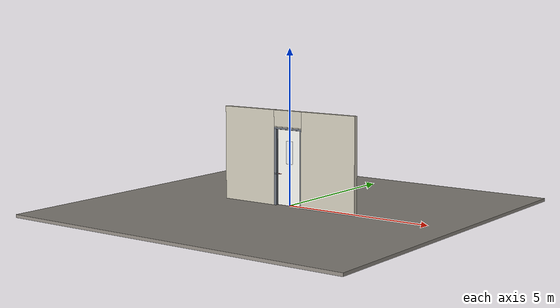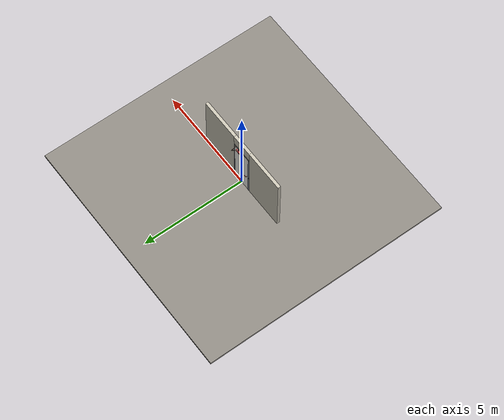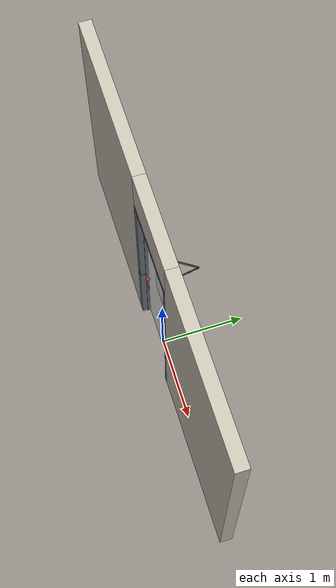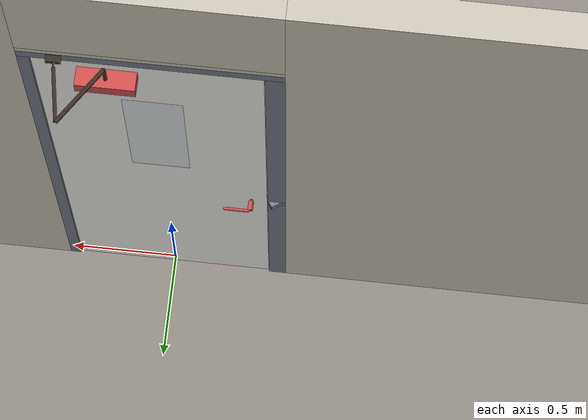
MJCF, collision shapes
<?xml version="1.0" ?>
<mujoco model="db0701_swing_single_full">
  <compiler angle="radian" meshdir="../../hardware" texturedir="../../textures" autolimits="true" inertiafromgeom="false"/>
  <option timestep="0.002" integrator="implicitfast" cone="elliptic" impratio="10" noslip_iterations="3">
    <flag multiccd="enable"/>
  </option>
  <size memory="16M"/>
  <default>
    <geom condim="4" solref="0.005 1" solimp="0.95 0.99 0.001"/>
    <joint solreflimit="0.005 1" solimplimit="0.95 0.99 0.001"/>
    <tendon solreflimit="0.005 1"/>
    <equality solref="0.002 1"/>
  </default>
  <visual>
    <headlight ambient="0.4 0.4 0.4" diffuse="0.7 0.7 0.7" specular="0.2 0.2 0.2"/>
    <quality shadowsize="4096"/>
    <map znear="0.01" zfar="60"/>
  </visual>
  <asset>
    <mesh name="closer_body_b226fdb10b" file="closer_body_b226fdb10b.obj"/>
    <mesh name="hinge_e22b26c0c1" file="hinge_e22b26c0c1.obj"/>
    <mesh name="hinge_jamb_e1d088f8dc" file="hinge_jamb_e1d088f8dc.obj"/>
    <mesh name="lever_57205841c3" file="lever_57205841c3.obj"/>
    <material name="mat_floor" rgba="0.55 0.53 0.5 1" specular="0.2" shininess="0.15" reflectance="0"/>
    <material name="mat_wall" rgba="0.78 0.76 0.7 1" specular="0.2" shininess="0.1" reflectance="0"/>
    <material name="mat_leaf" rgba="0.93 0.93 0.91 1" specular="0.2" shininess="0.51" reflectance="0"/>
    <material name="mat_glass" rgba="0.9 0.93 0.95 0.6" specular="0.2" shininess="0.5" reflectance="0.1"/>
    <material name="mat_hinge" rgba="0.65 0.66 0.68 1" specular="0.74" shininess="0.5" reflectance="0.36"/>
    <material name="mat_op_black_matte_metal" rgba="0.05 0.05 0.05 1" specular="0.38" shininess="0.3" reflectance="0.12"/>
    <material name="mat_trim" rgba="0.85 0.66 0.3 1" specular="0.8" shininess="0.75" reflectance="0.4"/>
    <material name="mat_bolt" rgba="0.75 0.76 0.77 1" specular="0.8" shininess="0.65" reflectance="0.4"/>
    <material name="mat_frame" rgba="0.45 0.48 0.52 1" specular="0.32" shininess="0.6" reflectance="0.08"/>
    <material name="mat_seal" rgba="0.1 0.1 0.1 1" specular="0.2" shininess="0.1" reflectance="0"/>
    <material name="mat_closer" rgba="0.22 0.17 0.13 1" specular="0.8" shininess="0.6" reflectance="0.4"/>
    <texture name="skybox" type="skybox" builtin="gradient" rgb1="0.6 0.7 0.85" rgb2="0.9 0.92 0.95" width="256" height="256"/>
  </asset>
  <worldbody>
    <light name="sun" pos="1.5 -2.5 4" dir="-0.3 0.5 -0.8" directional="true" diffuse="0.8 0.8 0.8" specular="0.3 0.3 0.3" castshadow="true"/>
    <light name="fill" pos="-1.5 2.5 3" dir="0.3 -0.5 -0.7" directional="true" diffuse="0.35 0.35 0.4" castshadow="false"/>
    <camera name="robot_view" pos="0 -2.966312 2.043887" xyaxes="1 0 0 0 0.26963 0.962964" fovy="52"/>
    <camera name="far_view" pos="0 2.879313 2.043887" xyaxes="-1 0 0 0 -0.26963 0.962964" fovy="52"/>
    <camera name="iso" pos="-2.221337 -2.498663 2.511538" xyaxes="0.741536 -0.670913 0 0.242917 0.268487 0.932151" fovy="46"/>
    <camera name="detail_handle" pos="-0.1105 -0.877 1.296" xyaxes="0.97561 0.219512 0 -0.070934 0.315262 0.94635" fovy="38"/>
    <geom name="floor" type="box" size="6 6 0.05" pos="0 0 -0.05" material="mat_floor" group="0" contype="1" conaffinity="1" friction="0.8 0.005 0.0001" density="2400"/>
    <geom name="wall_left" type="box" size="0.97975 0.0725 1.5255" pos="-1.52025 -0.0435 1.5255" material="mat_wall" group="0" contype="1" conaffinity="1" friction="0.6 0.005 0.0001" density="800"/>
    <geom name="wall_right" type="box" size="0.99475 0.0725 1.5255" pos="1.50525 -0.0435 1.5255" material="mat_wall" group="0" contype="1" conaffinity="1" friction="0.6 0.005 0.0001" density="800"/>
    <geom name="wall_header" type="box" size="0.5255 0.0725 0.26" pos="-0.015 -0.0435 2.791" material="mat_wall" group="0" contype="1" conaffinity="1" friction="0.6 0.005 0.0001" density="800"/>
    <geom name="hinge_0_jamb" type="mesh" mesh="hinge_jamb_e1d088f8dc" pos="0.4575 0.029 0.259" quat="0 0 0 1" material="mat_hinge" group="1" contype="0" conaffinity="0" density="7850"/>
    <geom name="hinge_1_jamb" type="mesh" mesh="hinge_jamb_e1d088f8dc" pos="0.4575 0.029 0.928333" quat="0 0 0 1" material="mat_hinge" group="1" contype="0" conaffinity="0" density="7850"/>
    <geom name="hinge_2_jamb" type="mesh" mesh="hinge_jamb_e1d088f8dc" pos="0.4575 0.029 1.597667" quat="0 0 0 1" material="mat_hinge" group="1" contype="0" conaffinity="0" density="7850"/>
    <geom name="hinge_3_jamb" type="mesh" mesh="hinge_jamb_e1d088f8dc" pos="0.4575 0.029 2.267" quat="0 0 0 1" material="mat_hinge" group="1" contype="0" conaffinity="0" density="7850"/>
    <geom name="jamb_hinge" type="box" size="0.025 0.0725 1.2255" pos="0.4855 -0.0435 1.2255" material="mat_frame" group="0" contype="1" conaffinity="1" friction="0.6 0.005 0.0001" density="300"/>
    <geom name="strike_1016_wall_n" type="box" size="0.04 0.05325 0.018" pos="-0.5005 -0.06275 1.016" material="mat_frame" group="0" contype="1" conaffinity="1" friction="0.6 0.005 0.0001" density="300"/>
    <geom name="strike_1016_wall_p" type="box" size="0.04 0.008 0.018" pos="-0.5005 0.0175 1.016" material="mat_frame" group="0" contype="1" conaffinity="1" friction="0.6 0.005 0.0001" density="300"/>
    <geom name="strike_1016_ramp" type="box" size="0.04 0.018028 0.018" pos="-0.503782 0.018312 1.016" quat="0.957092 0 0 0.289784" material="mat_frame" group="0" contype="1" conaffinity="1" friction="0.12 0.005 0.0001" density="300"/>
    <geom name="strike_1016_back" type="box" size="0.0285 0.0095 0.018" pos="-0.512 0 1.016" material="mat_frame" group="0" contype="1" conaffinity="1" friction="0.6 0.005 0.0001" density="300"/>
    <geom name="jamb_strike_0" type="box" size="0.04 0.0725 0.499" pos="-0.5005 -0.0435 0.499" material="mat_frame" group="0" contype="1" conaffinity="1" friction="0.6 0.005 0.0001" density="300"/>
    <geom name="jamb_strike_1" type="box" size="0.04 0.0725 0.7085" pos="-0.5005 -0.0435 1.7425" material="mat_frame" group="0" contype="1" conaffinity="1" friction="0.6 0.005 0.0001" density="300"/>
    <geom name="jamb_head" type="box" size="0.5255 0.0725 0.025" pos="-0.015 -0.0435 2.476" material="mat_frame" group="0" contype="1" conaffinity="1" friction="0.6 0.005 0.0001" density="300"/>
    <geom name="head_stud" type="box" size="0.5255 0.0725 0.015" pos="-0.015 -0.0435 2.516" material="mat_wall" group="0" contype="1" conaffinity="1" friction="0.6 0.005 0.0001" density="500"/>
    <geom name="stop_hinge" type="box" size="0.0055 0.016 1.2255" pos="0.455 -0.0385 1.2255" material="mat_frame" group="0" contype="1" conaffinity="1" friction="0.6 0.005 0.0001" density="300"/>
    <geom name="stop_strike" type="box" size="0.0055 0.016 1.2255" pos="-0.455 -0.0385 1.2255" material="mat_frame" group="0" contype="1" conaffinity="1" friction="0.6 0.005 0.0001" density="300"/>
    <geom name="stop_head" type="box" size="0.4605 0.016 0.0055" pos="0 -0.0385 2.4455" material="mat_frame" group="0" contype="1" conaffinity="1" friction="0.6 0.005 0.0001" density="300"/>
    <geom name="seal_hinge" type="box" size="0.004 0.002 1.2255" pos="0.4575 -0.024 1.2255" material="mat_seal" group="1" contype="0" conaffinity="0" density="1100"/>
    <geom name="seal_strike" type="box" size="0.004 0.002 1.2255" pos="-0.4575 -0.024 1.2255" material="mat_seal" group="1" contype="0" conaffinity="0" density="1100"/>
    <geom name="seal_head" type="box" size="0.4405 0.002 0.008" pos="0 -0.024 2.439" material="mat_seal" group="1" contype="0" conaffinity="0" density="1100"/>
    <geom name="closer_bracket" type="box" size="0.03 0.012 0.014" pos="0.3605 0.041 2.481" material="mat_closer" group="1" contype="0" conaffinity="0" density="2700"/>
    <site name="approach_point" pos="0 -1.5 0" quat="1 0 0 0" size="0.05" rgba="0.2 0.9 0.2 0.5" group="4"/>
    <site name="goal_point" pos="0 1.5 0" quat="1 0 0 0" size="0.05" rgba="0.2 0.9 0.2 0.5" group="4"/>
    <site name="door_plane_center" pos="0 0 1.2255" quat="1 0 0 0" size="0.02" rgba="0.2 0.9 0.2 0.5" group="4"/>
    <body name="leaf" pos="0.4605 0 0">
      <inertial pos="-0.437471 0.006763 1.347624" mass="74.965093" quat="0.508381 -0.50814 -0.497451 -0.48568" diaginertia="4.999107779 42.384712138 47.312156663"/>
      <joint name="leaf_hinge" type="hinge" axis="0 0 -1" pos="-0.003 0.029 0" limited="true" range="0 1.745329" solreflimit="0.02 1" damping="10.307281" frictionloss="2.04964" stiffness="12.197635" springref="-2.749713" armature="0.02"/>
      <geom name="leaf_slab" type="box" size="0.457 0.022 1.219" pos="-0.46 0 1.228" material="mat_leaf" group="0" contype="1" conaffinity="1" friction="0.4 0.005 0.0001" density="1"/>
      <geom name="leaf_glass_0" type="box" size="0.125 0.0228 0.3657" pos="-0.46 0 1.7156" material="mat_glass" group="1" contype="0" conaffinity="0" density="1"/>
      <geom name="hinge_0" type="mesh" mesh="hinge_e22b26c0c1" pos="-0.003 0.029 0.259" quat="0 0 0 1" material="mat_hinge" group="1" contype="0" conaffinity="0" density="7850"/>
      <geom name="hinge_1" type="mesh" mesh="hinge_e22b26c0c1" pos="-0.003 0.029 0.928333" quat="0 0 0 1" material="mat_hinge" group="1" contype="0" conaffinity="0" density="7850"/>
      <geom name="hinge_2" type="mesh" mesh="hinge_e22b26c0c1" pos="-0.003 0.029 1.597667" quat="0 0 0 1" material="mat_hinge" group="1" contype="0" conaffinity="0" density="7850"/>
      <geom name="hinge_3" type="mesh" mesh="hinge_e22b26c0c1" pos="-0.003 0.029 2.267" quat="0 0 0 1" material="mat_hinge" group="1" contype="0" conaffinity="0" density="7850"/>
      <geom name="leaf_latch_bolt_faceplate" type="box" size="0.0006 0.014 0.028" pos="-0.9164 0 1.016" material="mat_bolt" group="1" contype="0" conaffinity="0" density="8500"/>
      <geom name="closer_body" type="mesh" mesh="closer_body_b226fdb10b" pos="-0.3 0.022 2.358" quat="0 0 0.707107 0.707107" material="mat_closer" group="1" contype="0" conaffinity="0" density="2000"/>
      <geom name="closer_body_col" type="box" size="0.12 0.04 0.03" pos="-0.3 0.062 2.358" material="mat_closer" group="3" contype="1" conaffinity="1" rgba="0.8 0.3 0.3 0.25" friction="0.6 0.005 0.0001" density="2000"/>
      <geom name="closer_pinion_shaft" type="cylinder" size="0.008 0.0615" pos="-0.3 0.064 2.4195" material="mat_closer" group="1" contype="0" conaffinity="0" density="2700"/>
      <site name="leaf_edge_mid" pos="-0.917 0 1.219" quat="1 0 0 0" size="0.02" rgba="0.2 0.9 0.2 0.5" group="4"/>
      <body name="leaf_handle" pos="-0.847 0 1.016">
        <inertial pos="0.018425 0 0" mass="0.806444" quat="0 0.707107 0.707107 0" diaginertia="0.001006485 0.002593405 0.00349528"/>
        <joint name="leaf_handle_hinge" type="hinge" axis="0 1 0" limited="true" range="0 0.87" damping="0.212417" frictionloss="0.042" stiffness="1" springref="-0.35" armature="0.01"/>
        <geom name="leaf_handle_spindle" type="cylinder" size="0.006 0.03" pos="0 0 0" quat="0.707107 -0.707107 0 0" material="mat_op_black_matte_metal" group="1" contype="0" conaffinity="0" density="7850"/>
        <geom name="leaf_handle_lever_n" type="mesh" mesh="lever_57205841c3" pos="0 -0.022 0" quat="0 0 -0.707107 0.707107" material="mat_op_black_matte_metal" group="1" contype="0" conaffinity="0" density="3000"/>
        <geom name="leaf_handle_lever_col_n" type="capsule" size="0.007 0.053" pos="0.06 -0.077 0" quat="0.707107 0 0.707107 0" material="mat_op_black_matte_metal" group="3" contype="1" conaffinity="1" rgba="0.8 0.3 0.3 0.25" friction="0.7 0.01 0.0001" density="3000"/>
        <geom name="leaf_handle_hub_col_n" type="cylinder" size="0.012 0.022" pos="0 -0.052 0" quat="0.707107 -0.707107 0 0" material="mat_op_black_matte_metal" group="3" contype="1" conaffinity="1" rgba="0.8 0.3 0.3 0.25" friction="0.6 0.005 0.0001" density="3000"/>
        <geom name="leaf_handle_lever_p" type="mesh" mesh="lever_57205841c3" pos="0 0.022 0" quat="0 0 0.707107 0.707107" material="mat_op_black_matte_metal" group="1" contype="0" conaffinity="0" density="3000"/>
        <geom name="leaf_handle_lever_col_p" type="capsule" size="0.007 0.053" pos="0.06 0.077 0" quat="0.707107 0 0.707107 0" material="mat_op_black_matte_metal" group="3" contype="1" conaffinity="1" rgba="0.8 0.3 0.3 0.25" friction="0.7 0.01 0.0001" density="3000"/>
        <geom name="leaf_handle_hub_col_p" type="cylinder" size="0.012 0.022" pos="0 0.052 0" quat="0.707107 -0.707107 0 0" material="mat_op_black_matte_metal" group="3" contype="1" conaffinity="1" rgba="0.8 0.3 0.3 0.25" friction="0.6 0.005 0.0001" density="3000"/>
        <site name="leaf_handle_grip_n" pos="0.096 -0.077 0" quat="1 0 0 0" size="0.012" rgba="0.2 0.9 0.2 0.5" group="4"/>
        <site name="leaf_handle_grip_p" pos="0.096 0.077 0" quat="1 0 0 0" size="0.012" rgba="0.2 0.9 0.2 0.5" group="4"/>
      </body>
      <body name="leaf_latch_bolt" pos="-0.917 0 1.016">
        <inertial pos="0.0055 0 0" mass="0.074627" quat="0.92388 0.382683 0 0" diaginertia="0.000002271 0.000013255 0.000013255"/>
        <joint name="leaf_latch_bolt_slide" type="slide" axis="1 0 0" limited="true" range="0 0.019" damping="2" frictionloss="0.3" stiffness="550" springref="-0.01" armature="0.1"/>
        <geom name="leaf_latch_bolt_capsule" type="capsule" size="0.008 0.0165" pos="0.0055 0 0" quat="0.707107 0 -0.707107 0" material="mat_bolt" group="0" contype="1" conaffinity="1" friction="0.2 0.005 0.0001" density="8500"/>
      </body>
      <body name="closer_arm_main" pos="-0.3 0.064 2.481" quat="0.881485 0 0 0.472212">
        <inertial pos="0.14 0 0" mass="0.12096" quat="1 0 0 0" diaginertia="0.000003588 0.00079128 0.000792852"/>
        <joint name="closer_pinion" type="hinge" axis="0 0 1" limited="false" damping="0.01" armature="0.002"/>
        <geom name="closer_arm_main_geom" type="box" size="0.14 0.008 0.005" pos="0.14 0 0" material="mat_closer" group="1" contype="0" conaffinity="0" density="2700"/>
        <body name="closer_arm_fore" pos="0.28 0 0" quat="0.371222 0 0 -0.928544">
          <inertial pos="0.128088 0 0" mass="0.076531" quat="1 0 0 0" diaginertia="0.000001771 0.000437665 0.000438201"/>
          <joint name="closer_elbow" type="hinge" axis="0 0 1" limited="false" damping="0.01" armature="0.002"/>
          <geom name="closer_arm_fore_geom" type="box" size="0.1125 0.007 0.004" pos="0.1125 0 0" material="mat_closer" group="1" contype="0" conaffinity="0" density="2700"/>
          <geom name="closer_fore_neck" type="box" size="0.0175 0.003 0.003" pos="0.2425 0 0" material="mat_closer" group="1" contype="0" conaffinity="0" density="2700"/>
          <geom name="closer_fore_pivot" type="cylinder" size="0.005 0.012" pos="0.26 0 0" material="mat_closer" group="1" contype="0" conaffinity="0" density="2700"/>
        </body>
      </body>
    </body>
  </worldbody>
  <tendon>
    <fixed name="leaf_latch_bolt_coupling" limited="true" range="0 10">
      <joint joint="leaf_latch_bolt_slide" coef="1"/>
      <joint joint="leaf_handle_hinge" coef="-0.023457"/>
    </fixed>
  </tendon>
  <equality>
    <connect name="closer_arm_connect" body1="closer_arm_fore" body2="world" anchor="0.26 0 0" active="true"/>
  </equality>
  <contact>
    <exclude body1="closer_arm_main" body2="leaf"/>
    <exclude body1="closer_arm_fore" body2="leaf"/>
    <exclude body1="closer_arm_main" body2="closer_arm_fore"/>
  </contact>
  <sensor>
    <jointpos name="leaf_hinge_pos" joint="leaf_hinge"/>
    <jointvel name="leaf_hinge_vel" joint="leaf_hinge"/>
    <jointpos name="leaf_handle_hinge_pos" joint="leaf_handle_hinge"/>
    <jointvel name="leaf_handle_hinge_vel" joint="leaf_handle_hinge"/>
    <jointpos name="leaf_latch_bolt_slide_pos" joint="leaf_latch_bolt_slide"/>
    <jointvel name="leaf_latch_bolt_slide_vel" joint="leaf_latch_bolt_slide"/>
  </sensor>
</mujoco>
